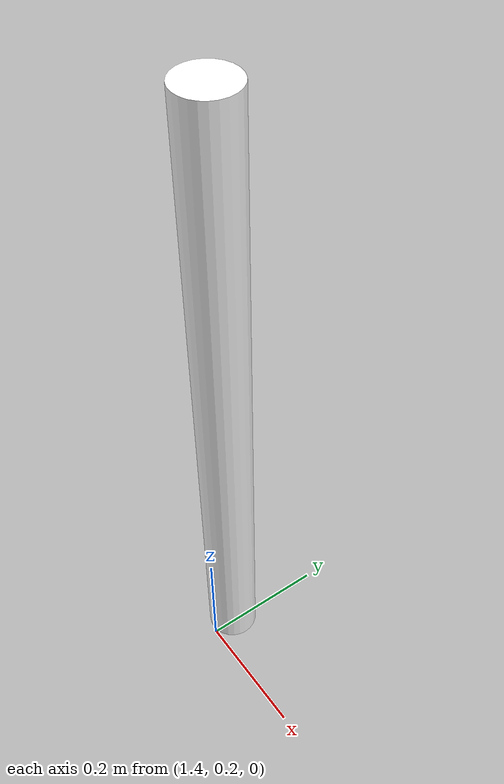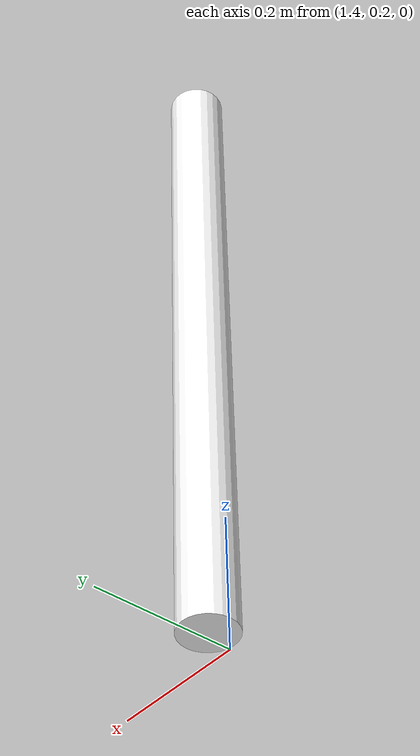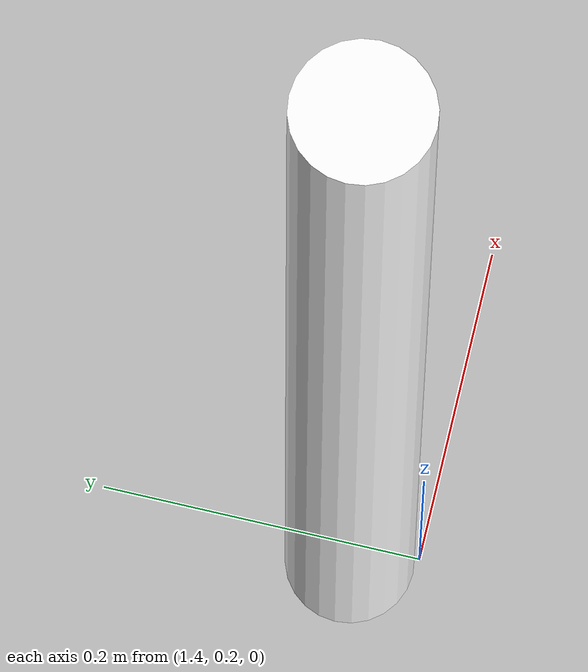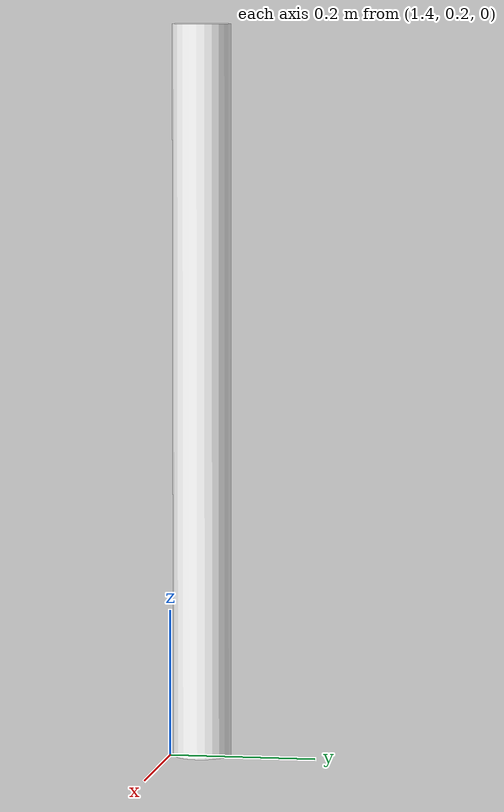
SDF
<?xml version="1.0" ?>

<sdf version="1.5">
<model name='kinect_pilar'>
      <static>1</static>
      <pose frame=''>1.39 0.242 0.5 0 -0 0</pose>
      <link name='link'>
        <inertial>
          <mass>1</mass>
          <inertia>
            <ixx>0.145833</ixx>
            <ixy>0</ixy>
            <ixz>0</ixz>
            <iyy>0.145833</iyy>
            <iyz>0</iyz>
            <izz>0.125</izz>
          </inertia>
        </inertial>
        <collision name='collision'>
          <geometry>
            <cylinder>
              <radius>0.04</radius>
              <length>1</length>
            </cylinder>
          </geometry>
          <max_contacts>10</max_contacts>
          <surface>
            <contact>
              <ode/>
            </contact>
            <bounce/>
            <friction>
              <torsional>
                <ode/>
              </torsional>
              <ode/>
            </friction>
          </surface>
        </collision>
        <visual name='visual'>
          <geometry>
            <cylinder>
              <radius>0.04</radius>
              <length>1</length>
            </cylinder>
          </geometry>
          <material>
            <script>
              <uri>file://media/materials/scripts/gazebo.material</uri>
              <name>Gazebo/Metal</name>
            </script>
            <ambient>1 1 1 1</ambient>
          </material>
        </visual>
        <self_collide>0</self_collide>
        <kinematic>0</kinematic>
      </link>
    </model>
</sdf>
